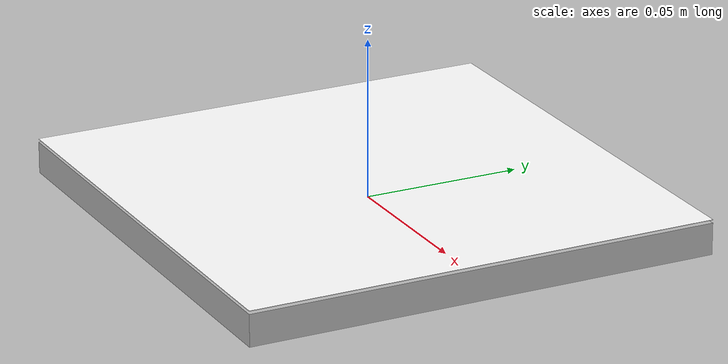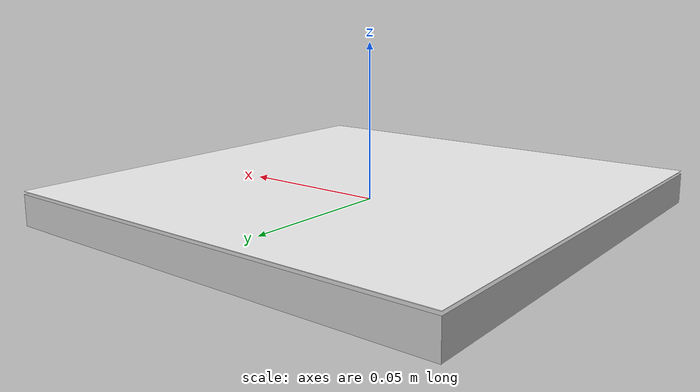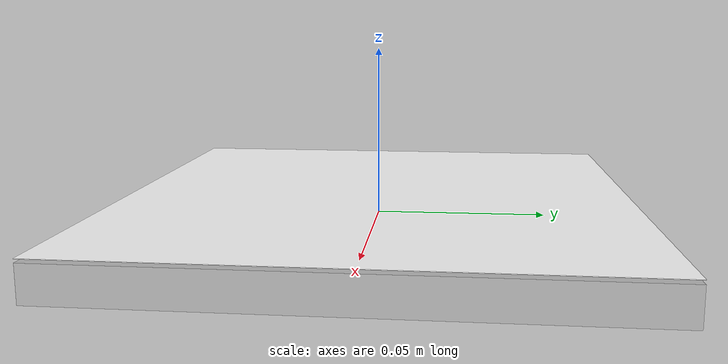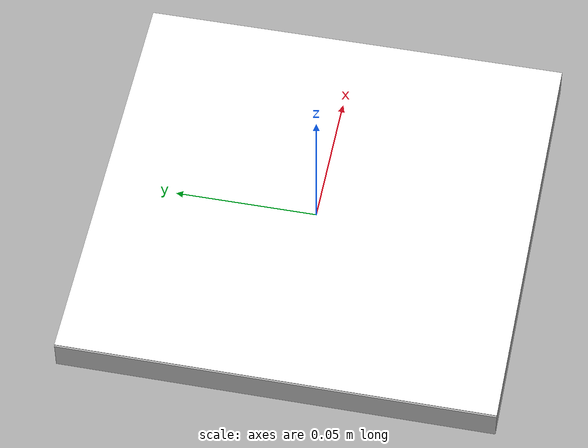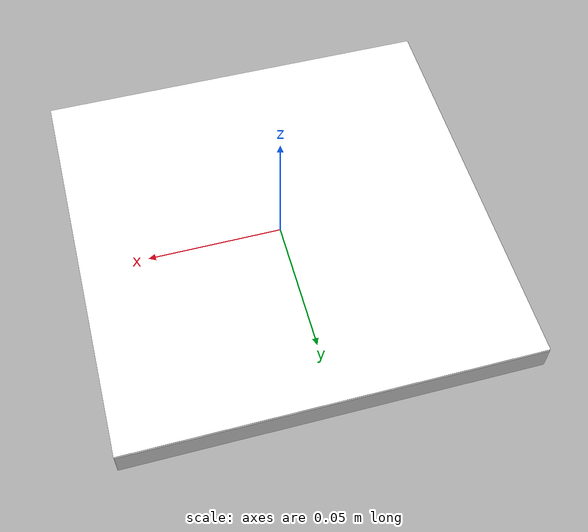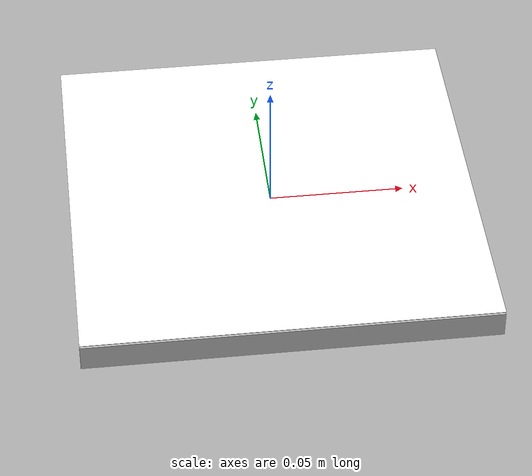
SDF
<?xml version="1.0"?>
<sdf version="1.6">
  <model name="aruco_marker1">
    <static>false</static>
    <link name="link">

      <inertial>
        <mass>0.05</mass>
        <inertia>
          <ixx>9.4e-05</ixx>
          <ixy>0.0</ixy>
          <ixz>0.0</ixz>
          <iyy>9.4e-05</iyy>
          <iyz>0.0</iyz>
          <izz>1.8e-04</izz>
        </inertia>
      </inertial>

      <collision name="collision">
        <geometry>
          <box>
            <size>0.15 0.15 0.01</size>
          </box>
        </geometry>
        <surface>
          <friction>
            <ode>
              <mu>1.0</mu> <mu2>1.0</mu2>
            </ode>
          </friction>
        </surface>
      </collision>

      <visual name="base_visual">
        <geometry>
          <box>
            <size>0.15 0.15 0.01</size>
          </box>
        </geometry>
        <material>
          <color rgba="1.0 1.0 1.0 1.0" />
        </material>
      </visual>

      <visual name="tag_visual">
        <pose>0 0 0.006 0 0 0</pose> <geometry>
          <plane>
            <normal>0 0 1</normal>
            <size>0.15 0.15</size>
          </plane>
        </geometry>
        <material>
          <diffuse>1 1 1 1</diffuse>
          <specular>0.4 0.4 0.4 1</specular>
          <pbr>
            <metal>
              <albedo_map>materials/textures/marker_1-1.png</albedo_map>
            </metal>
          </pbr>
        </material>
      </visual>

    </link>
  </model>
</sdf>
